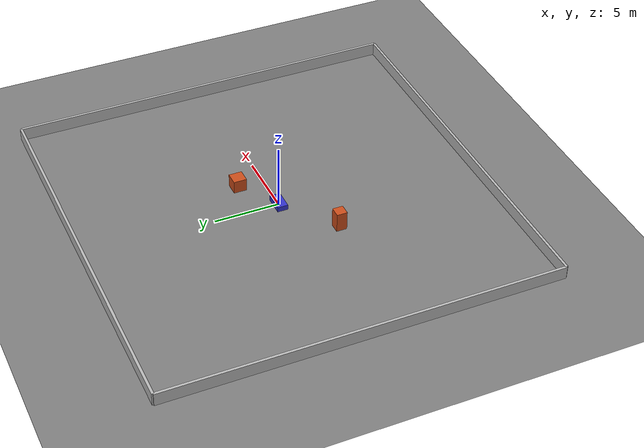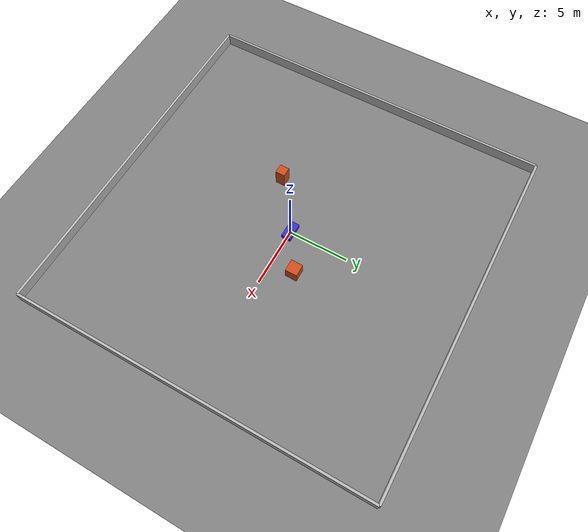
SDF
<sdf version="1.9">
 <world name="test_track">
  <physics name="1ms" type="ignored">
   <max_step_size>0.001</max_step_size>
   <real_time_factor>1.0</real_time_factor>
  </physics>
  <plugin filename="gz-sim-physics-system" name="gz::sim::systems::Physics"/>
  <plugin filename="gz-sim-sensors-system" name="gz::sim::systems::Sensors">
   <render_engine>ogre2</render_engine>
  </plugin>
  <plugin filename="gz-sim-scene-broadcaster-system" name="gz::sim::systems::SceneBroadcaster"/>
  <plugin filename="gz-sim-user-commands-system" name="gz::sim::systems::UserCommands"/>
  <plugin filename="gz-sim-imu-system" name="gz::sim::systems::Imu"/>
  <light type="directional" name="sun">
   <pose>0 0 10 0 0 0</pose>
   <diffuse>0.8 0.8 0.8 1</diffuse>
   <specular>0.2 0.2 0.2 1</specular>
   <direction>-0.5 0.1 -0.9</direction>
  </light>
  <model name="ground_plane">
   <static>true</static>
   <link name="link">
    <collision name="collision">
     <geometry><plane><normal>0 0 1</normal><size>30 30</size></plane></geometry>
    </collision>
    <visual name="visual">
     <geometry><plane><normal>0 0 1</normal><size>30 30</size></plane></geometry>
     <material><ambient>0.5 0.5 0.5 1</ambient><diffuse>0.5 0.5 0.5 1</diffuse></material>
    </visual>
   </link>
  </model>
  <model name="wall_north">
   <static>true</static>
   <pose>0 15 0.5 0 0 0</pose>
   <link name="link">
    <collision name="collision"><geometry><box><size>30 0.2 1</size></box></geometry></collision>
    <visual name="visual"><geometry><box><size>30 0.2 1</size></box></geometry></visual>
   </link>
  </model>
  <model name="wall_south">
   <static>true</static>
   <pose>0 -15 0.5 0 0 0</pose>
   <link name="link">
    <collision name="collision"><geometry><box><size>30 0.2 1</size></box></geometry></collision>
    <visual name="visual"><geometry><box><size>30 0.2 1</size></box></geometry></visual>
   </link>
  </model>
  <model name="wall_east">
   <static>true</static>
   <pose>15 0 0.5 0 0 1.5708</pose>
   <link name="link">
    <collision name="collision"><geometry><box><size>30 0.2 1</size></box></geometry></collision>
    <visual name="visual"><geometry><box><size>30 0.2 1</size></box></geometry></visual>
   </link>
  </model>
  <model name="wall_west">
   <static>true</static>
   <pose>-15 0 0.5 0 0 1.5708</pose>
   <link name="link">
    <collision name="collision"><geometry><box><size>30 0.2 1</size></box></geometry></collision>
    <visual name="visual"><geometry><box><size>30 0.2 1</size></box></geometry></visual>
   </link>
  </model>
  <model name="obstacle_1">
   <static>true</static>
   <pose>3 2 0.5 0 0 0</pose>
   <link name="link">
    <collision name="collision"><geometry><box><size>1 1 1</size></box></geometry></collision>
    <visual name="visual">
     <geometry><box><size>1 1 1</size></box></geometry>
     <material><ambient>0.8 0.3 0.1 1</ambient><diffuse>0.8 0.3 0.1 1</diffuse></material>
    </visual>
   </link>
  </model>
  <model name="obstacle_2">
   <static>true</static>
   <pose>-4 -3 0.75 0 0 0</pose>
   <link name="link">
    <collision name="collision"><geometry><box><size>0.8 0.8 1.5</size></box></geometry></collision>
    <visual name="visual">
     <geometry><box><size>0.8 0.8 1.5</size></box></geometry>
     <material><ambient>0.8 0.3 0.1 1</ambient><diffuse>0.8 0.3 0.1 1</diffuse></material>
    </visual>
   </link>
  </model>
  <model name="vehicle">
   <pose>0 0 0.2 0 0 0</pose>
   <link name="chassis">
    <inertial><mass>50</mass><inertia><ixx>1</ixx><iyy>1</iyy><izz>1</izz></inertia></inertial>
    <collision name="collision"><geometry><box><size>1.5 0.8 0.4</size></box></geometry></collision>
    <visual name="visual">
     <geometry><box><size>1.5 0.8 0.4</size></box></geometry>
     <material><ambient>0.2 0.2 0.8 1</ambient><diffuse>0.2 0.2 0.8 1</diffuse></material>
    </visual>
    <sensor name="lidar" type="gpu_lidar">
     <pose>0.5 0 0.3 0 0 0</pose>
     <topic>lidar</topic>
     <update_rate>10</update_rate>
     <lidar>
      <scan>
       <horizontal>
        <samples>640</samples>
        <resolution>1</resolution>
        <min_angle>-3.14159</min_angle>
        <max_angle>3.14159</max_angle>
       </horizontal>
       <vertical>
        <samples>16</samples>
        <resolution>1</resolution>
        <min_angle>-0.2618</min_angle>
        <max_angle>0.2618</max_angle>
       </vertical>
      </scan>
      <range><min>0.1</min><max>30</max><resolution>0.01</resolution></range>
     </lidar>
     <always_on>true</always_on>
     <visualize>false</visualize>
    </sensor>
    <sensor name="camera" type="camera">
     <pose>0.75 0 0.3 0 0 0</pose>
     <topic>camera</topic>
     <update_rate>15</update_rate>
     <camera>
      <horizontal_fov>1.396</horizontal_fov>
      <image><width>640</width><height>480</height></image>
      <clip><near>0.1</near><far>50</far></clip>
     </camera>
     <always_on>true</always_on>
    </sensor>
    <sensor name="imu" type="imu">
     <topic>imu</topic>
     <update_rate>100</update_rate>
     <always_on>true</always_on>
    </sensor>
   </link>
  </model>
 </world>
</sdf>
